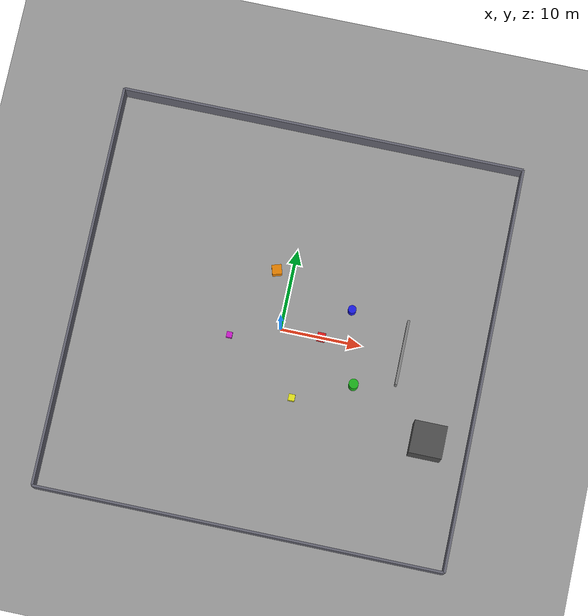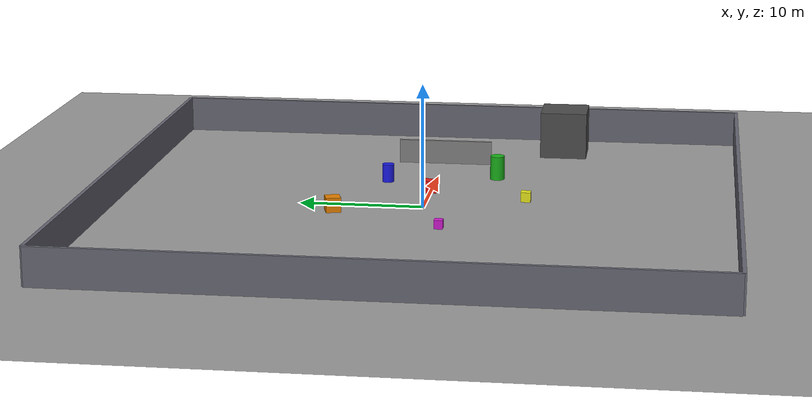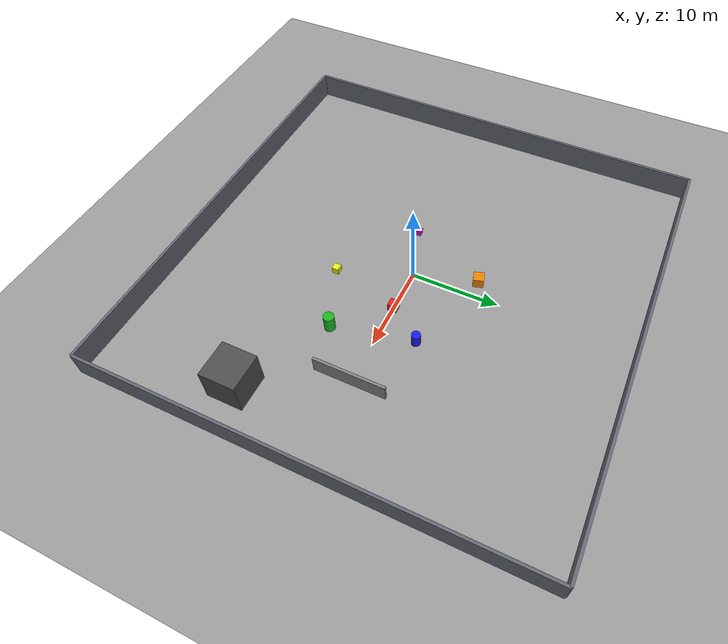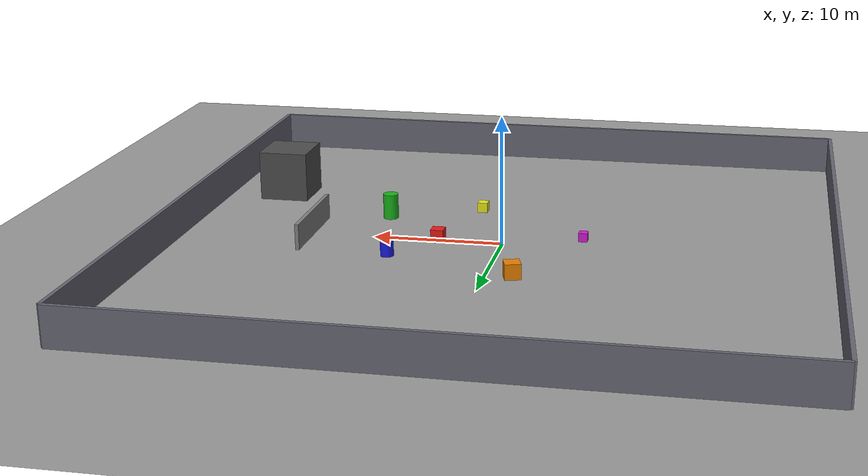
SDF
<?xml version="1.0"?>
<!-- Obstacle World — Gz Fortress (SDF 1.8)                                              -->
<!-- Large open area (50x50m) with scattered obstacles for LiDAR testing                 -->
<sdf version="1.8">
  <world name="obstacle_world">

    <!-- Physics -->
    <physics name="default_physics" type="ode">
      <max_step_size>0.001</max_step_size>
      <real_time_factor>1.0</real_time_factor>
      <real_time_update_rate>1000</real_time_update_rate>
    </physics>

    <!-- Gravity -->
    <gravity>0 0 -9.81</gravity>

    <!-- Required Gz Systems -->
    <plugin filename="ignition-gazebo-physics-system" name="ignition::gazebo::systems::Physics"/>
    <plugin filename="ignition-gazebo-user-commands-system" name="ignition::gazebo::systems::UserCommands"/>
    <plugin filename="ignition-gazebo-scene-broadcaster-system" name="ignition::gazebo::systems::SceneBroadcaster"/>
    <plugin filename="ignition-gazebo-sensors-system" name="ignition::gazebo::systems::Sensors">
      <render_engine>ogre2</render_engine>
    </plugin>
    <plugin filename="ignition-gazebo-contact-system" name="ignition::gazebo::systems::Contact"/>

    <!-- Lighting -->
    <light type="directional" name="sun">
      <cast_shadows>true</cast_shadows>
      <pose>0 0 20 0 0 0</pose>
      <diffuse>0.9 0.9 0.9 1</diffuse>
      <specular>0.3 0.3 0.3 1</specular>
      <attenuation>
        <range>1000</range>
        <constant>0.9</constant>
        <linear>0.01</linear>
        <quadratic>0.001</quadratic>
      </attenuation>
      <direction>-0.5 0.1 -0.9</direction>
    </light>

    <!-- Ground Plane (large) -->
    <model name="ground_plane">
      <static>true</static>
      <link name="link">
        <collision name="collision">
          <geometry>
            <plane>
              <normal>0 0 1</normal>
              <size>100 100</size>
            </plane>
          </geometry>
          <surface>
            <friction>
              <ode>
                <mu>2.0</mu>
                <mu2>2.0</mu2>
              </ode>
            </friction>
          </surface>
        </collision>
        <visual name="visual">
          <geometry>
            <plane>
              <normal>0 0 1</normal>
              <size>100 100</size>
            </plane>
          </geometry>
          <material>
            <ambient>0.6 0.6 0.6 1</ambient>
            <diffuse>0.6 0.6 0.6 1</diffuse>
          </material>
        </visual>
      </link>
    </model>

    <!-- OBSTACLES — scattered in a large 50x50m area                    -->

    <!-- RED Box — 5m front -->
    <model name="red_box_front">
      <pose>5.0 0 0.5 0 0 0</pose>
      <static>true</static>
      <link name="link">
        <collision name="collision">
          <geometry><box><size>1.0 1.0 1.0</size></box></geometry>
        </collision>
        <visual name="visual">
          <geometry><box><size>1.0 1.0 1.0</size></box></geometry>
          <material>
            <ambient>0.9 0.1 0.1 1</ambient>
            <diffuse>0.9 0.1 0.1 1</diffuse>
          </material>
        </visual>
      </link>
    </model>

    <!-- BLUE Cylinder — 8m front-left -->
    <model name="blue_cylinder">
      <pose>8.0 4.0 0.75 0 0 0</pose>
      <static>true</static>
      <link name="link">
        <collision name="collision">
          <geometry><cylinder><radius>0.5</radius><length>1.5</length></cylinder></geometry>
        </collision>
        <visual name="visual">
          <geometry><cylinder><radius>0.5</radius><length>1.5</length></cylinder></geometry>
          <material>
            <ambient>0.1 0.1 0.9 1</ambient>
            <diffuse>0.1 0.1 0.9 1</diffuse>
          </material>
        </visual>
      </link>
    </model>

    <!-- GREEN Cylinder — 10m front-right -->
    <model name="green_cylinder">
      <pose>10.0 -5.0 1.0 0 0 0</pose>
      <static>true</static>
      <link name="link">
        <collision name="collision">
          <geometry><cylinder><radius>0.6</radius><length>2.0</length></cylinder></geometry>
        </collision>
        <visual name="visual">
          <geometry><cylinder><radius>0.6</radius><length>2.0</length></cylinder></geometry>
          <material>
            <ambient>0.1 0.7 0.1 1</ambient>
            <diffuse>0.1 0.7 0.1 1</diffuse>
          </material>
        </visual>
      </link>
    </model>

    <!-- YELLOW Box — 12m right -->
    <model name="yellow_box">
      <pose>3.0 -8.0 0.4 0 0 0</pose>
      <static>true</static>
      <link name="link">
        <collision name="collision">
          <geometry><box><size>0.8 0.8 0.8</size></box></geometry>
        </collision>
        <visual name="visual">
          <geometry><box><size>0.8 0.8 0.8</size></box></geometry>
          <material>
            <ambient>0.9 0.9 0.1 1</ambient>
            <diffuse>0.9 0.9 0.1 1</diffuse>
          </material>
        </visual>
      </link>
    </model>

    <!-- GREY Wall — 15m ahead -->
    <model name="wall_far">
      <pose>15.0 0 1.0 0 0 0</pose>
      <static>true</static>
      <link name="link">
        <collision name="collision">
          <geometry><box><size>0.3 8.0 2.0</size></box></geometry>
        </collision>
        <visual name="visual">
          <geometry><box><size>0.3 8.0 2.0</size></box></geometry>
          <material>
            <ambient>0.5 0.5 0.5 1</ambient>
            <diffuse>0.5 0.5 0.5 1</diffuse>
          </material>
        </visual>
      </link>
    </model>

    <!-- ORANGE Box — 7m left -->
    <model name="orange_box">
      <pose>-2.0 7.0 0.6 0 0 0.3</pose>
      <static>true</static>
      <link name="link">
        <collision name="collision">
          <geometry><box><size>1.2 1.2 1.2</size></box></geometry>
        </collision>
        <visual name="visual">
          <geometry><box><size>1.2 1.2 1.2</size></box></geometry>
          <material>
            <ambient>0.9 0.5 0.0 1</ambient>
            <diffuse>0.9 0.5 0.0 1</diffuse>
          </material>
        </visual>
      </link>
    </model>

    <!-- MAGENTA Box — 6m behind -->
    <model name="magenta_box">
      <pose>-6.0 -2.0 0.35 0 0 0</pose>
      <static>true</static>
      <link name="link">
        <collision name="collision">
          <geometry><box><size>0.7 0.7 0.7</size></box></geometry>
        </collision>
        <visual name="visual">
          <geometry><box><size>0.7 0.7 0.7</size></box></geometry>
          <material>
            <ambient>0.8 0.1 0.8 1</ambient>
            <diffuse>0.8 0.1 0.8 1</diffuse>
          </material>
        </visual>
      </link>
    </model>

    <!-- DARK GREY Building — 20m ahead-right -->
    <model name="building_far">
      <pose>20.0 -10.0 2.0 0 0 0</pose>
      <static>true</static>
      <link name="link">
        <collision name="collision">
          <geometry><box><size>4.0 4.0 4.0</size></box></geometry>
        </collision>
        <visual name="visual">
          <geometry><box><size>4.0 4.0 4.0</size></box></geometry>
          <material>
            <ambient>0.3 0.3 0.3 1</ambient>
            <diffuse>0.3 0.3 0.3 1</diffuse>
          </material>
        </visual>
      </link>
    </model>

    <!-- BOUNDARY WALLS — 50m x 50m perimeter (far away)                 -->

    <model name="wall_north">
      <pose>0 25 1.5 0 0 0</pose>
      <static>true</static>
      <link name="link">
        <collision name="collision">
          <geometry><box><size>50 0.3 3.0</size></box></geometry>
        </collision>
        <visual name="visual">
          <geometry><box><size>50 0.3 3.0</size></box></geometry>
          <material>
            <ambient>0.4 0.4 0.45 1</ambient>
            <diffuse>0.4 0.4 0.45 1</diffuse>
          </material>
        </visual>
      </link>
    </model>

    <model name="wall_south">
      <pose>0 -25 1.5 0 0 0</pose>
      <static>true</static>
      <link name="link">
        <collision name="collision">
          <geometry><box><size>50 0.3 3.0</size></box></geometry>
        </collision>
        <visual name="visual">
          <geometry><box><size>50 0.3 3.0</size></box></geometry>
          <material>
            <ambient>0.4 0.4 0.45 1</ambient>
            <diffuse>0.4 0.4 0.45 1</diffuse>
          </material>
        </visual>
      </link>
    </model>

    <model name="wall_east">
      <pose>25 0 1.5 0 0 0</pose>
      <static>true</static>
      <link name="link">
        <collision name="collision">
          <geometry><box><size>0.3 50 3.0</size></box></geometry>
        </collision>
        <visual name="visual">
          <geometry><box><size>0.3 50 3.0</size></box></geometry>
          <material>
            <ambient>0.4 0.4 0.45 1</ambient>
            <diffuse>0.4 0.4 0.45 1</diffuse>
          </material>
        </visual>
      </link>
    </model>

    <model name="wall_west">
      <pose>-25 0 1.5 0 0 0</pose>
      <static>true</static>
      <link name="link">
        <collision name="collision">
          <geometry><box><size>0.3 50 3.0</size></box></geometry>
        </collision>
        <visual name="visual">
          <geometry><box><size>0.3 50 3.0</size></box></geometry>
          <material>
            <ambient>0.4 0.4 0.45 1</ambient>
            <diffuse>0.4 0.4 0.45 1</diffuse>
          </material>
        </visual>
      </link>
    </model>

  </world>
</sdf>
